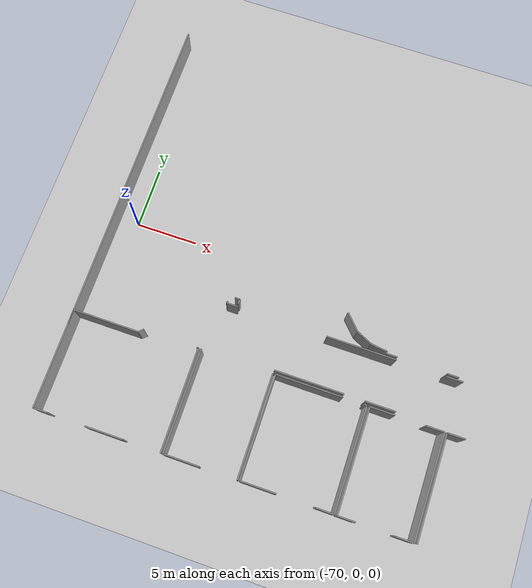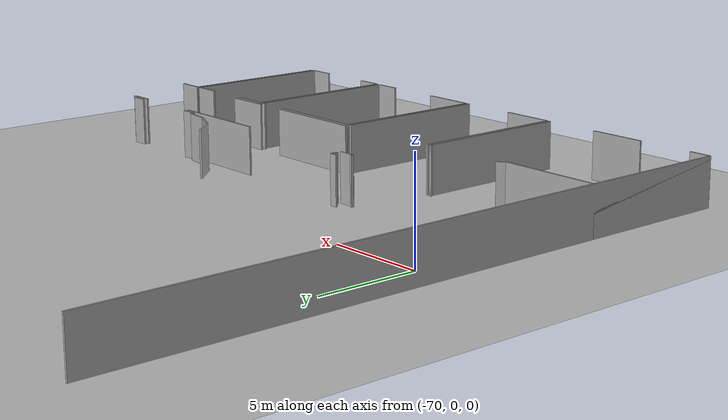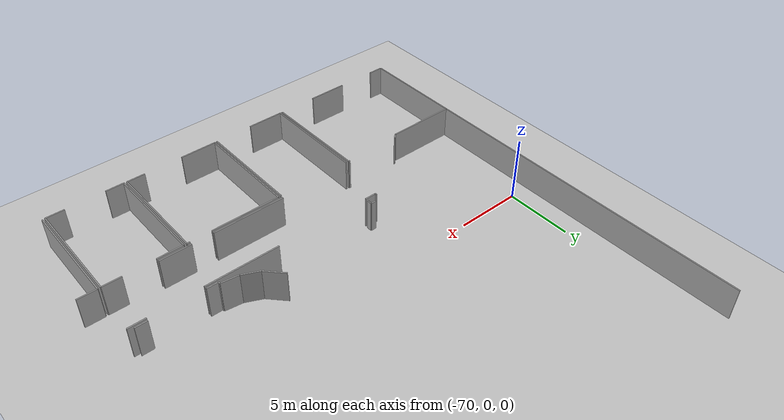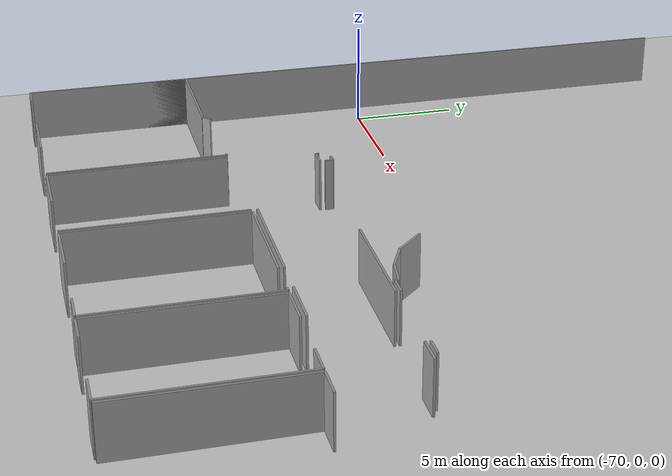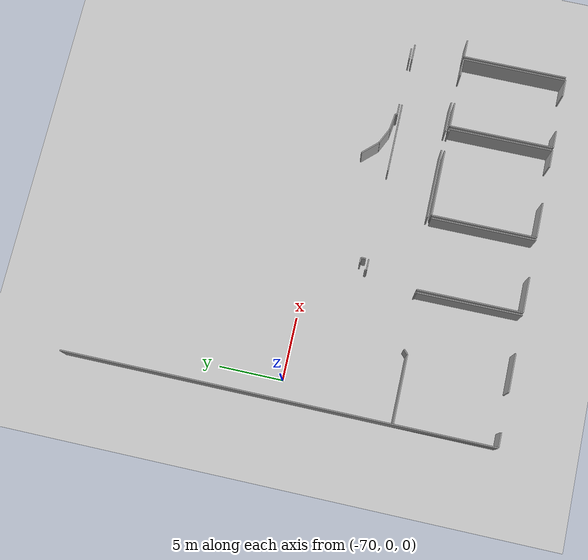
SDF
<sdf version="1.6">
 <world name="default">
  <model name="ground_plane">
   <static>1</static>
   <link name="link">
    <collision name="collision">
     <geometry><plane><normal>0 0 1</normal><size>100 100</size></plane></geometry>
     <surface><friction><ode><mu>100</mu><mu2>50</mu2></ode></friction></surface>
    </collision>
    <visual name="visual">
     <cast_shadows>0</cast_shadows>
     <geometry><plane><normal>0 0 1</normal><size>100 100</size></plane></geometry>
     <material>
      <script><uri>file://media/materials/scripts/gazebo.material</uri><name>Gazebo/Grey</name></script>
     </material>
    </visual>
   </link>
  </model>
  <model name="50041184">
   <static>1</static>
   <link name="Wall_276">
    <collision name="Wall_276_Collision">
     <geometry><box><size>0.89310084359 0.1 2.5</size></box></geometry>
     <pose>0.446550421795 0 1.25 0 0 0</pose>
    </collision>
    <visual name="Wall_276_Visual">
     <pose>0.446550421795 0 1.25 0 0 0</pose>
     <geometry><box><size>0.89310084359 0.1 2.5</size></box></geometry>
     <material>
      <script><uri>file://media/materials/scripts/gazebo.material</uri><name>Gazebo/Grey</name></script>
      <ambient>1 1 1 1</ambient>
     </material>
    </visual>
    <pose>29.5110606128 -21.0764182022 0 0 0 3.14159265359</pose>
   </link>
   <link name="Wall_277">
    <collision name="Wall_277_Collision">
     <geometry><box><size>0.875962447871 0.1 2.5</size></box></geometry>
     <pose>0.437981223935 0 1.25 0 0 0</pose>
    </collision>
    <visual name="Wall_277_Visual">
     <pose>0.437981223935 0 1.25 0 0 0</pose>
     <geometry><box><size>0.875962447871 0.1 2.5</size></box></geometry>
     <material>
      <script><uri>file://media/materials/scripts/gazebo.material</uri><name>Gazebo/Grey</name></script>
      <ambient>1 1 1 1</ambient>
     </material>
    </visual>
    <pose>24.6734627811 -21.0764182022 0 0 0 3.14159265359</pose>
   </link>
   <link name="Wall_278">
    <collision name="Wall_278_Collision">
     <geometry><box><size>0.150310078011 0.1 2.5</size></box></geometry>
     <pose>0.0751550390057 0 1.25 0 0 0</pose>
    </collision>
    <visual name="Wall_278_Visual">
     <pose>0.0751550390057 0 1.25 0 0 0</pose>
     <geometry><box><size>0.150310078011 0.1 2.5</size></box></geometry>
     <material>
      <script><uri>file://media/materials/scripts/gazebo.material</uri><name>Gazebo/Grey</name></script>
      <ambient>1 1 1 1</ambient>
     </material>
    </visual>
    <pose>23.7975003332 -21.0764182022 0 0 0 1.57079632679</pose>
   </link>
   <link name="Wall_279">
    <collision name="Wall_279_Collision">
     <geometry><box><size>1.32634352185 0.1 2.5</size></box></geometry>
     <pose>0.663171760925 0 1.25 0 0 0</pose>
    </collision>
    <visual name="Wall_279_Visual">
     <pose>0.663171760925 0 1.25 0 0 0</pose>
     <geometry><box><size>1.32634352185 0.1 2.5</size></box></geometry>
     <material>
      <script><uri>file://media/materials/scripts/gazebo.material</uri><name>Gazebo/Grey</name></script>
      <ambient>1 1 1 1</ambient>
     </material>
    </visual>
    <pose>23.7975003332 -20.9261081242 0 0 0 3.0090221462</pose>
   </link>
   <link name="Wall_280">
    <collision name="Wall_280_Collision">
     <geometry><box><size>1.37412221902 0.1 2.5</size></box></geometry>
     <pose>0.687061109509 0 1.25 0 0 0</pose>
    </collision>
    <visual name="Wall_280_Visual">
     <pose>0.687061109509 0 1.25 0 0 0</pose>
     <geometry><box><size>1.37412221902 0.1 2.5</size></box></geometry>
     <material>
      <script><uri>file://media/materials/scripts/gazebo.material</uri><name>Gazebo/Grey</name></script>
      <ambient>1 1 1 1</ambient>
     </material>
    </visual>
    <pose>22.482794955 -20.7507886836 0 0 0 2.70244832257</pose>
   </link>
   <link name="Wall_281">
    <collision name="Wall_281_Collision">
     <geometry><box><size>1.64163767426 0.1 2.5</size></box></geometry>
     <pose>0.820818837131 0 1.25 0 0 0</pose>
    </collision>
    <visual name="Wall_281_Visual">
     <pose>0.820818837131 0 1.25 0 0 0</pose>
     <geometry><box><size>1.64163767426 0.1 2.5</size></box></geometry>
     <material>
      <script><uri>file://media/materials/scripts/gazebo.material</uri><name>Gazebo/Grey</name></script>
      <ambient>1 1 1 1</ambient>
     </material>
    </visual>
    <pose>21.2390552301 -20.1665598162 0 0 0 2.32742781077</pose>
   </link>
   <link name="Wall_303">
    <collision name="Wall_303_Collision">
     <geometry><box><size>0.38402701519 0.1 2.5</size></box></geometry>
     <pose>0.192013507595 0 1.25 0 0 0</pose>
    </collision>
    <visual name="Wall_303_Visual">
     <pose>0.192013507595 0 1.25 0 0 0</pose>
     <geometry><box><size>0.38402701519 0.1 2.5</size></box></geometry>
     <material>
      <script><uri>file://media/materials/scripts/gazebo.material</uri><name>Gazebo/Grey</name></script>
      <ambient>1 1 1 1</ambient>
     </material>
    </visual>
    <pose>11.8726045918 -21.0755295447 0 0 0 1.57079632679</pose>
   </link>
   <link name="Wall_304">
    <collision name="Wall_304_Collision">
     <geometry><box><size>0.403196628179 0.1 2.5</size></box></geometry>
     <pose>0.20159831409 0 1.25 0 0 0</pose>
    </collision>
    <visual name="Wall_304_Visual">
     <pose>0.20159831409 0 1.25 0 0 0</pose>
     <geometry><box><size>0.403196628179 0.1 2.5</size></box></geometry>
     <material>
      <script><uri>file://media/materials/scripts/gazebo.material</uri><name>Gazebo/Grey</name></script>
      <ambient>1 1 1 1</ambient>
     </material>
    </visual>
    <pose>11.8726045918 -20.6915025295 0 0 0 3.14159265359</pose>
   </link>
   <link name="Wall_313">
    <collision name="Wall_313_Collision">
     <geometry><box><size>2.39429735751 0.1 2.5</size></box></geometry>
     <pose>1.19714867876 0 1.25 0 0 0</pose>
    </collision>
    <visual name="Wall_313_Visual">
     <pose>1.19714867876 0 1.25 0 0 0</pose>
     <geometry><box><size>2.39429735751 0.1 2.5</size></box></geometry>
     <material>
      <script><uri>file://media/materials/scripts/gazebo.material</uri><name>Gazebo/Grey</name></script>
      <ambient>1 1 1 1</ambient>
     </material>
    </visual>
    <pose>25.709383589 -25.074742448 0 0 0 3.14159265359</pose>
   </link>
   <link name="Wall_314">
    <collision name="Wall_314_Collision">
     <geometry><box><size>5.54700046337 0.1 2.5</size></box></geometry>
     <pose>2.77350023169 0 1.25 0 0 0</pose>
    </collision>
    <visual name="Wall_314_Visual">
     <pose>2.77350023169 0 1.25 0 0 0</pose>
     <geometry><box><size>5.54700046337 0.1 2.5</size></box></geometry>
     <material>
      <script><uri>file://media/materials/scripts/gazebo.material</uri><name>Gazebo/Grey</name></script>
      <ambient>1 1 1 1</ambient>
     </material>
    </visual>
    <pose>21.6774173072 -25.074742448 0 0 0 3.14159265359</pose>
   </link>
   <link name="Wall_315">
    <collision name="Wall_315_Collision">
     <geometry><box><size>0.153103001758 0.1 2.5</size></box></geometry>
     <pose>0.0765515008791 0 1.25 0 0 0</pose>
    </collision>
    <visual name="Wall_315_Visual">
     <pose>0.0765515008791 0 1.25 0 0 0</pose>
     <geometry><box><size>0.153103001758 0.1 2.5</size></box></geometry>
     <material>
      <script><uri>file://media/materials/scripts/gazebo.material</uri><name>Gazebo/Grey</name></script>
      <ambient>1 1 1 1</ambient>
     </material>
    </visual>
    <pose>10.998292508 -21.1445909319 0 0 0 -1.57079632679</pose>
   </link>
   <link name="Wall_316">
    <collision name="Wall_316_Collision">
     <geometry><box><size>0.882944757238 0.1 2.5</size></box></geometry>
     <pose>0.441472378619 0 1.25 0 0 0</pose>
    </collision>
    <visual name="Wall_316_Visual">
     <pose>0.441472378619 0 1.25 0 0 0</pose>
     <geometry><box><size>0.882944757238 0.1 2.5</size></box></geometry>
     <material>
      <script><uri>file://media/materials/scripts/gazebo.material</uri><name>Gazebo/Grey</name></script>
      <ambient>1 1 1 1</ambient>
     </material>
    </visual>
    <pose>10.998292508 -21.2976939336 0 0 0 0.0</pose>
   </link>
   <link name="Wall_317">
    <collision name="Wall_317_Collision">
     <geometry><box><size>5.56756653823 0.1 2.5</size></box></geometry>
     <pose>2.78378326912 0 1.25 0 0 0</pose>
    </collision>
    <visual name="Wall_317_Visual">
     <pose>2.78378326912 0 1.25 0 0 0</pose>
     <geometry><box><size>5.56756653823 0.1 2.5</size></box></geometry>
     <material>
      <script><uri>file://media/materials/scripts/gazebo.material</uri><name>Gazebo/Grey</name></script>
      <ambient>1 1 1 1</ambient>
     </material>
    </visual>
    <pose>19.1104664817 -21.2976939336 0 0 0 0.0</pose>
   </link>
   <link name="Wall_318">
    <collision name="Wall_318_Collision">
     <geometry><box><size>1.30264502574 0.1 2.5</size></box></geometry>
     <pose>0.65132251287 0 1.25 0 0 0</pose>
    </collision>
    <visual name="Wall_318_Visual">
     <pose>0.65132251287 0 1.25 0 0 0</pose>
     <geometry><box><size>1.30264502574 0.1 2.5</size></box></geometry>
     <material>
      <script><uri>file://media/materials/scripts/gazebo.material</uri><name>Gazebo/Grey</name></script>
      <ambient>1 1 1 1</ambient>
     </material>
    </visual>
    <pose>28.5835560267 -21.2976939336 0 0 0 0.0</pose>
   </link>
   <link name="Wall_323">
    <collision name="Wall_323_Collision">
     <geometry><box><size>3.02664068401 0.1 2.5</size></box></geometry>
     <pose>1.51332034201 0 1.25 0 0 0</pose>
    </collision>
    <visual name="Wall_323_Visual">
     <pose>1.51332034201 0 1.25 0 0 0</pose>
     <geometry><box><size>3.02664068401 0.1 2.5</size></box></geometry>
     <material>
      <script><uri>file://media/materials/scripts/gazebo.material</uri><name>Gazebo/Grey</name></script>
      <ambient>1 1 1 1</ambient>
     </material>
    </visual>
    <pose>7.17846147987 -33.6002691363 0 0 0 3.14159265359</pose>
   </link>
   <link name="Wall_324">
    <collision name="Wall_324_Collision">
     <geometry><box><size>1.15409956773 0.1 2.5</size></box></geometry>
     <pose>0.577049783866 0 1.25 0 0 0</pose>
    </collision>
    <visual name="Wall_324_Visual">
     <pose>0.577049783866 0 1.25 0 0 0</pose>
     <geometry><box><size>1.15409956773 0.1 2.5</size></box></geometry>
     <material>
      <script><uri>file://media/materials/scripts/gazebo.material</uri><name>Gazebo/Grey</name></script>
      <ambient>1 1 1 1</ambient>
     </material>
    </visual>
    <pose>1.15409956773 -33.6002691363 0 0 0 3.14159265359</pose>
   </link>
   <link name="Wall_325">
    <collision name="Wall_325_Collision">
     <geometry><box><size>7.94967659213 0.1 2.5</size></box></geometry>
     <pose>3.97483829606 0 1.25 0 0 0</pose>
    </collision>
    <visual name="Wall_325_Visual">
     <pose>3.97483829606 0 1.25 0 0 0</pose>
     <geometry><box><size>7.94967659213 0.1 2.5</size></box></geometry>
     <material>
      <script><uri>file://media/materials/scripts/gazebo.material</uri><name>Gazebo/Grey</name></script>
      <ambient>1 1 1 1</ambient>
     </material>
    </visual>
    <pose>0.0 -33.6002691363 0 0 0 1.57079632679</pose>
   </link>
   <link name="Wall_326">
    <collision name="Wall_326_Collision">
     <geometry><box><size>5.33906729042 0.1 2.5</size></box></geometry>
     <pose>2.66953364521 0 1.25 0 0 0</pose>
    </collision>
    <visual name="Wall_326_Visual">
     <pose>2.66953364521 0 1.25 0 0 0</pose>
     <geometry><box><size>5.33906729042 0.1 2.5</size></box></geometry>
     <material>
      <script><uri>file://media/materials/scripts/gazebo.material</uri><name>Gazebo/Grey</name></script>
      <ambient>1 1 1 1</ambient>
     </material>
    </visual>
    <pose>0.0 -25.6505925442 0 0 0 0.0</pose>
   </link>
   <link name="Wall_327">
    <collision name="Wall_327_Collision">
     <geometry><box><size>0.459809203681 0.1 2.5</size></box></geometry>
     <pose>0.22990460184 0 1.25 0 0 0</pose>
    </collision>
    <visual name="Wall_327_Visual">
     <pose>0.22990460184 0 1.25 0 0 0</pose>
     <geometry><box><size>0.459809203681 0.1 2.5</size></box></geometry>
     <material>
      <script><uri>file://media/materials/scripts/gazebo.material</uri><name>Gazebo/Grey</name></script>
      <ambient>1 1 1 1</ambient>
     </material>
    </visual>
    <pose>5.33906729042 -25.6505925442 0 0 0 0.756109665987</pose>
   </link>
   <link name="Wall_328">
    <collision name="Wall_328_Collision">
     <geometry><box><size>0.119968770034 0.1 2.5</size></box></geometry>
     <pose>0.0599843850172 0 1.25 0 0 0</pose>
    </collision>
    <visual name="Wall_328_Visual">
     <pose>0.0599843850172 0 1.25 0 0 0</pose>
     <geometry><box><size>0.119968770034 0.1 2.5</size></box></geometry>
     <material>
      <script><uri>file://media/materials/scripts/gazebo.material</uri><name>Gazebo/Grey</name></script>
      <ambient>1 1 1 1</ambient>
     </material>
    </visual>
    <pose>10.0033768987 -25.3351191119 0 0 0 0.0</pose>
   </link>
   <link name="Wall_329">
    <collision name="Wall_329_Collision">
     <geometry><box><size>8.26522755773 0.1 2.5</size></box></geometry>
     <pose>4.13261377887 0 1.25 0 0 0</pose>
    </collision>
    <visual name="Wall_329_Visual">
     <pose>4.13261377887 0 1.25 0 0 0</pose>
     <geometry><box><size>8.26522755773 0.1 2.5</size></box></geometry>
     <material>
      <script><uri>file://media/materials/scripts/gazebo.material</uri><name>Gazebo/Grey</name></script>
      <ambient>1 1 1 1</ambient>
     </material>
    </visual>
    <pose>10.1233456687 -25.3351191119 0 0 0 -1.56646488933</pose>
   </link>
   <link name="Wall_330">
    <collision name="Wall_330_Collision">
     <geometry><box><size>2.80904653392 0.1 2.5</size></box></geometry>
     <pose>1.40452326696 0 1.25 0 0 0</pose>
    </collision>
    <visual name="Wall_330_Visual">
     <pose>1.40452326696 0 1.25 0 0 0</pose>
     <geometry><box><size>2.80904653392 0.1 2.5</size></box></geometry>
     <material>
      <script><uri>file://media/materials/scripts/gazebo.material</uri><name>Gazebo/Grey</name></script>
      <ambient>1 1 1 1</ambient>
     </material>
    </visual>
    <pose>13.1596346348 -33.5921442672 0 0 0 3.14159265359</pose>
   </link>
   <link name="Wall_331">
    <collision name="Wall_331_Collision">
     <geometry><box><size>8.25283576974 0.1 2.5</size></box></geometry>
     <pose>4.12641788487 0 1.25 0 0 0</pose>
    </collision>
    <visual name="Wall_331_Visual">
     <pose>4.12641788487 0 1.25 0 0 0</pose>
     <geometry><box><size>8.25283576974 0.1 2.5</size></box></geometry>
     <material>
      <script><uri>file://media/materials/scripts/gazebo.material</uri><name>Gazebo/Grey</name></script>
      <ambient>1 1 1 1</ambient>
     </material>
    </visual>
    <pose>10.3505881009 -33.5921442672 0 0 0 1.57079632679</pose>
   </link>
   <link name="Wall_332">
    <collision name="Wall_332_Collision">
     <geometry><box><size>8.25286045474 0.1 2.5</size></box></geometry>
     <pose>4.12643022737 0 1.25 0 0 0</pose>
    </collision>
    <visual name="Wall_332_Visual">
     <pose>4.12643022737 0 1.25 0 0 0</pose>
     <geometry><box><size>8.25286045474 0.1 2.5</size></box></geometry>
     <material>
      <script><uri>file://media/materials/scripts/gazebo.material</uri><name>Gazebo/Grey</name></script>
      <ambient>1 1 1 1</ambient>
     </material>
    </visual>
    <pose>16.1154366165 -25.3393084975 0 0 0 -1.56835047885</pose>
   </link>
   <link name="Wall_333">
    <collision name="Wall_333_Collision">
     <geometry><box><size>1.40077821012 0.1 2.5</size></box></geometry>
     <pose>0.700389105058 0 1.25 0 0 0</pose>
    </collision>
    <visual name="Wall_333_Visual">
     <pose>0.700389105058 0 1.25 0 0 0</pose>
     <geometry><box><size>1.40077821012 0.1 2.5</size></box></geometry>
     <material>
      <script><uri>file://media/materials/scripts/gazebo.material</uri><name>Gazebo/Grey</name></script>
      <ambient>1 1 1 1</ambient>
     </material>
    </visual>
    <pose>23.5391548867 -33.5703086815 0 0 0 3.14159265359</pose>
   </link>
   <link name="Wall_334">
    <collision name="Wall_334_Collision">
     <geometry><box><size>2.82364590805 0.1 2.5</size></box></geometry>
     <pose>1.41182295402 0 1.25 0 0 0</pose>
    </collision>
    <visual name="Wall_334_Visual">
     <pose>1.41182295402 0 1.25 0 0 0</pose>
     <geometry><box><size>2.82364590805 0.1 2.5</size></box></geometry>
     <material>
      <script><uri>file://media/materials/scripts/gazebo.material</uri><name>Gazebo/Grey</name></script>
      <ambient>1 1 1 1</ambient>
     </material>
    </visual>
    <pose>19.1551532617 -33.5703086815 0 0 0 3.14159265359</pose>
   </link>
   <link name="Wall_335">
    <collision name="Wall_335_Collision">
     <geometry><box><size>8.24521870497 0.1 2.5</size></box></geometry>
     <pose>4.12260935249 0 1.25 0 0 0</pose>
    </collision>
    <visual name="Wall_335_Visual">
     <pose>4.12260935249 0 1.25 0 0 0</pose>
     <geometry><box><size>8.24521870497 0.1 2.5</size></box></geometry>
     <material>
      <script><uri>file://media/materials/scripts/gazebo.material</uri><name>Gazebo/Grey</name></script>
      <ambient>1 1 1 1</ambient>
     </material>
    </visual>
    <pose>16.3315073536 -33.5703086815 0 0 0 1.57079632679</pose>
   </link>
   <link name="Wall_336">
    <collision name="Wall_336_Collision">
     <geometry><box><size>5.32966021544 0.1 2.5</size></box></geometry>
     <pose>2.66483010772 0 1.25 0 0 0</pose>
    </collision>
    <visual name="Wall_336_Visual">
     <pose>2.66483010772 0 1.25 0 0 0</pose>
     <geometry><box><size>5.32966021544 0.1 2.5</size></box></geometry>
     <material>
      <script><uri>file://media/materials/scripts/gazebo.material</uri><name>Gazebo/Grey</name></script>
      <ambient>1 1 1 1</ambient>
     </material>
    </visual>
    <pose>16.3315073536 -25.3250899766 0 0 0 0.0</pose>
   </link>
   <link name="Wall_337">
    <collision name="Wall_337_Collision">
     <geometry><box><size>0.232193524225 0.1 2.5</size></box></geometry>
     <pose>0.116096762113 0 1.25 0 0 0</pose>
    </collision>
    <visual name="Wall_337_Visual">
     <pose>0.116096762113 0 1.25 0 0 0</pose>
     <geometry><box><size>0.232193524225 0.1 2.5</size></box></geometry>
     <material>
      <script><uri>file://media/materials/scripts/gazebo.material</uri><name>Gazebo/Grey</name></script>
      <ambient>1 1 1 1</ambient>
     </material>
    </visual>
    <pose>23.2997251509 -25.3250899766 0 0 0 0.0</pose>
   </link>
   <link name="Wall_338">
    <collision name="Wall_338_Collision">
     <geometry><box><size>8.24522188031 0.1 2.5</size></box></geometry>
     <pose>4.12261094016 0 1.25 0 0 0</pose>
    </collision>
    <visual name="Wall_338_Visual">
     <pose>4.12261094016 0 1.25 0 0 0</pose>
     <geometry><box><size>8.24522188031 0.1 2.5</size></box></geometry>
     <material>
      <script><uri>file://media/materials/scripts/gazebo.material</uri><name>Gazebo/Grey</name></script>
      <ambient>1 1 1 1</ambient>
     </material>
    </visual>
    <pose>23.5319186751 -25.3250899766 0 0 0 -1.56991870184</pose>
   </link>
   <link name="Wall_339">
    <collision name="Wall_339_Collision">
     <geometry><box><size>1.3713255597 0.1 2.5</size></box></geometry>
     <pose>0.685662779848 0 1.25 0 0 0</pose>
    </collision>
    <visual name="Wall_339_Visual">
     <pose>0.685662779848 0 1.25 0 0 0</pose>
     <geometry><box><size>1.3713255597 0.1 2.5</size></box></geometry>
     <material>
      <script><uri>file://media/materials/scripts/gazebo.material</uri><name>Gazebo/Grey</name></script>
      <ambient>1 1 1 1</ambient>
     </material>
    </visual>
    <pose>29.5218514545 -33.5892243924 0 0 0 3.14159265359</pose>
   </link>
   <link name="Wall_340">
    <collision name="Wall_340_Collision">
     <geometry><box><size>1.38859090649 0.1 2.5</size></box></geometry>
     <pose>0.694295453247 0 1.25 0 0 0</pose>
    </collision>
    <visual name="Wall_340_Visual">
     <pose>0.694295453247 0 1.25 0 0 0</pose>
     <geometry><box><size>1.38859090649 0.1 2.5</size></box></geometry>
     <material>
      <script><uri>file://media/materials/scripts/gazebo.material</uri><name>Gazebo/Grey</name></script>
      <ambient>1 1 1 1</ambient>
     </material>
    </visual>
    <pose>25.1534648123 -33.5892243924 0 0 0 3.14159265359</pose>
   </link>
   <link name="Wall_341">
    <collision name="Wall_341_Collision">
     <geometry><box><size>8.25410528053 0.1 2.5</size></box></geometry>
     <pose>4.12705264027 0 1.25 0 0 0</pose>
    </collision>
    <visual name="Wall_341_Visual">
     <pose>4.12705264027 0 1.25 0 0 0</pose>
     <geometry><box><size>8.25410528053 0.1 2.5</size></box></geometry>
     <material>
      <script><uri>file://media/materials/scripts/gazebo.material</uri><name>Gazebo/Grey</name></script>
      <ambient>1 1 1 1</ambient>
     </material>
    </visual>
    <pose>23.7648739058 -33.5892243924 0 0 0 1.57079632679</pose>
   </link>
   <link name="Wall_342">
    <collision name="Wall_342_Collision">
     <geometry><box><size>1.96101332352 0.1 2.5</size></box></geometry>
     <pose>0.980506661758 0 1.25 0 0 0</pose>
    </collision>
    <visual name="Wall_342_Visual">
     <pose>0.980506661758 0 1.25 0 0 0</pose>
     <geometry><box><size>1.96101332352 0.1 2.5</size></box></geometry>
     <material>
      <script><uri>file://media/materials/scripts/gazebo.material</uri><name>Gazebo/Grey</name></script>
      <ambient>1 1 1 1</ambient>
     </material>
    </visual>
    <pose>23.7648739058 -25.3351191119 0 0 0 0.0</pose>
   </link>
   <link name="Wall_343">
    <collision name="Wall_343_Collision">
     <geometry><box><size>1.42070952958 0.1 2.5</size></box></geometry>
     <pose>0.710354764791 0 1.25 0 0 0</pose>
    </collision>
    <visual name="Wall_343_Visual">
     <pose>0.710354764791 0 1.25 0 0 0</pose>
     <geometry><box><size>1.42070952958 0.1 2.5</size></box></geometry>
     <material>
      <script><uri>file://media/materials/scripts/gazebo.material</uri><name>Gazebo/Grey</name></script>
      <ambient>1 1 1 1</ambient>
     </material>
    </visual>
    <pose>28.1050774084 -25.3351191119 0 0 0 0.0</pose>
   </link>
   <link name="Wall_344">
    <collision name="Wall_344_Collision">
     <geometry><box><size>8.25410621873 0.1 2.5</size></box></geometry>
     <pose>4.12705310937 0 1.25 0 0 0</pose>
    </collision>
    <visual name="Wall_344_Visual">
     <pose>4.12705310937 0 1.25 0 0 0</pose>
     <geometry><box><size>8.25410621873 0.1 2.5</size></box></geometry>
     <material>
      <script><uri>file://media/materials/scripts/gazebo.material</uri><name>Gazebo/Grey</name></script>
      <ambient>1 1 1 1</ambient>
     </material>
    </visual>
    <pose>29.525786938 -25.3351191119 0 0 0 -1.5712731178</pose>
   </link>
   <link name="Wall_347">
    <collision name="Wall_347_Collision">
     <geometry><box><size>8.24623431361 0.1 2.5</size></box></geometry>
     <pose>4.1231171568 0 1.25 0 0 0</pose>
    </collision>
    <visual name="Wall_347_Visual">
     <pose>4.1231171568 0 1.25 0 0 0</pose>
     <geometry><box><size>8.24623431361 0.1 2.5</size></box></geometry>
     <material>
      <script><uri>file://media/materials/scripts/gazebo.material</uri><name>Gazebo/Grey</name></script>
      <ambient>1 1 1 1</ambient>
     </material>
    </visual>
    <pose>29.7315746377 -33.5781796485 0 0 0 1.57079632679</pose>
   </link>
   <link name="Wall_348">
    <collision name="Wall_348_Collision">
     <geometry><box><size>1.40725271517 0.1 2.5</size></box></geometry>
     <pose>0.703626357583 0 1.25 0 0 0</pose>
    </collision>
    <visual name="Wall_348_Visual">
     <pose>0.703626357583 0 1.25 0 0 0</pose>
     <geometry><box><size>1.40725271517 0.1 2.5</size></box></geometry>
     <material>
      <script><uri>file://media/materials/scripts/gazebo.material</uri><name>Gazebo/Grey</name></script>
      <ambient>1 1 1 1</ambient>
     </material>
    </visual>
    <pose>29.7315746377 -25.3319453349 0 0 0 0.0</pose>
   </link>
   <link name="Wall_467">
    <collision name="Wall_467_Collision">
     <geometry><box><size>33.60775925 0.1 2.5</size></box></geometry>
     <pose>16.803879625 0 1.25 0 0 0</pose>
    </collision>
    <visual name="Wall_467_Visual">
     <pose>16.803879625 0 1.25 0 0 0</pose>
     <geometry><box><size>33.60775925 0.1 2.5</size></box></geometry>
     <material>
      <script><uri>file://media/materials/scripts/gazebo.material</uri><name>Gazebo/Grey</name></script>
      <ambient>1 1 1 1</ambient>
     </material>
    </visual>
    <pose>0.0 -33.60775925 0 0 0 1.57079632679</pose>
   </link>
   <pose>-71.6 16.80775925 0 0 0 0</pose>
  </model>
 </world>
</sdf>
